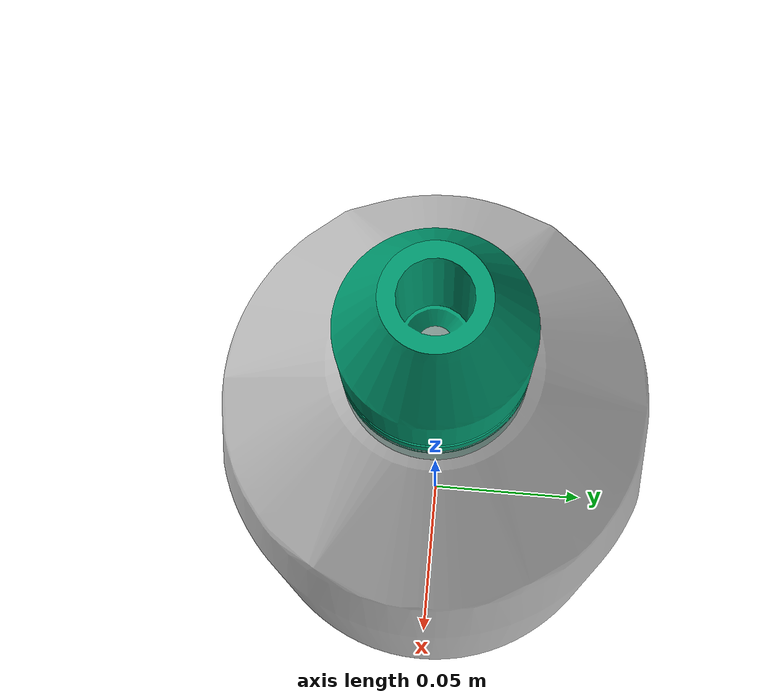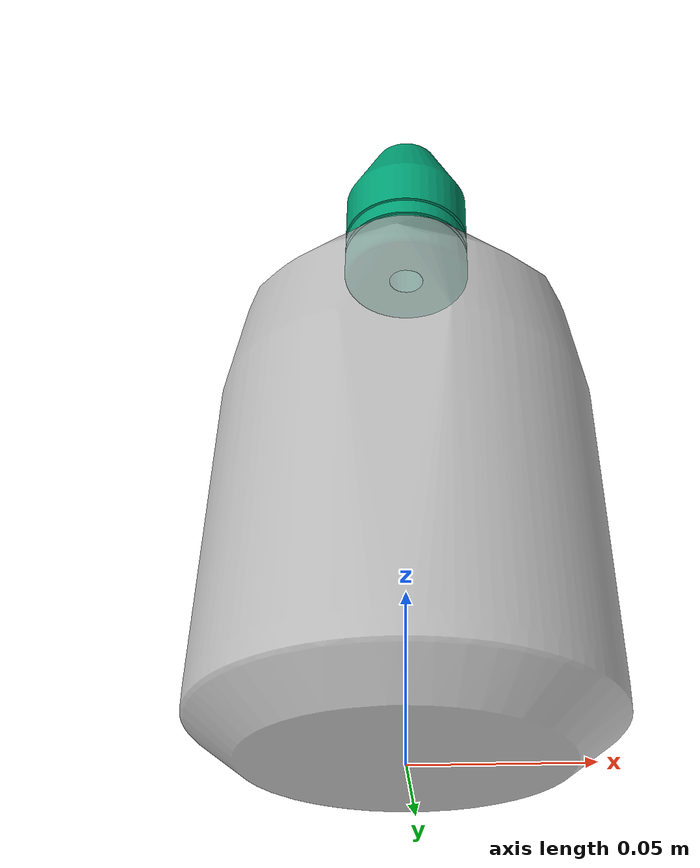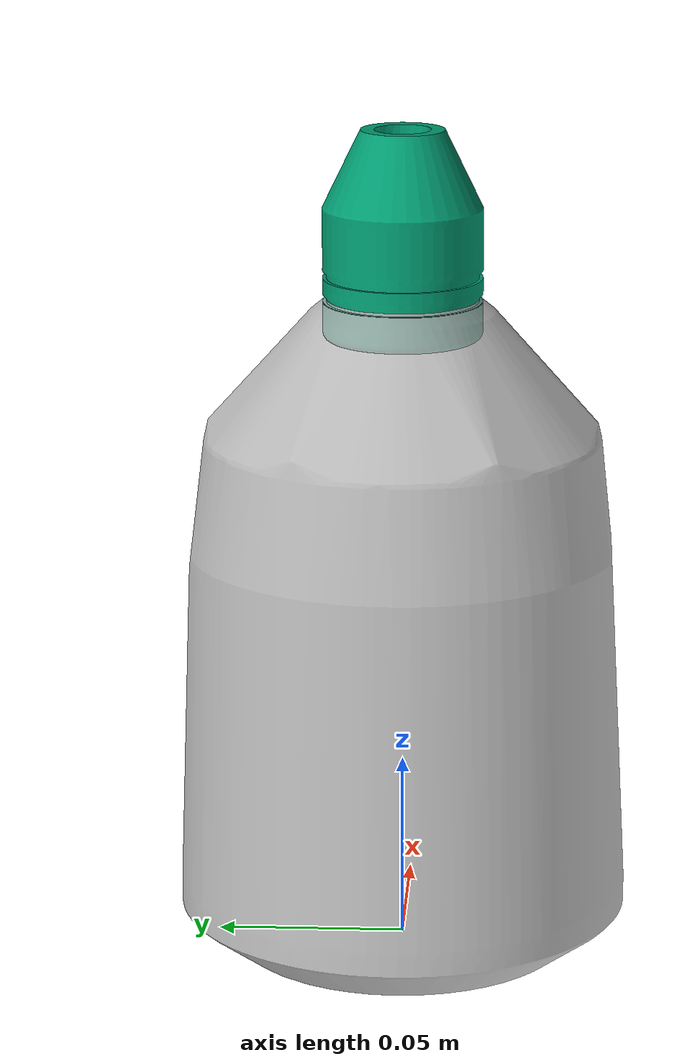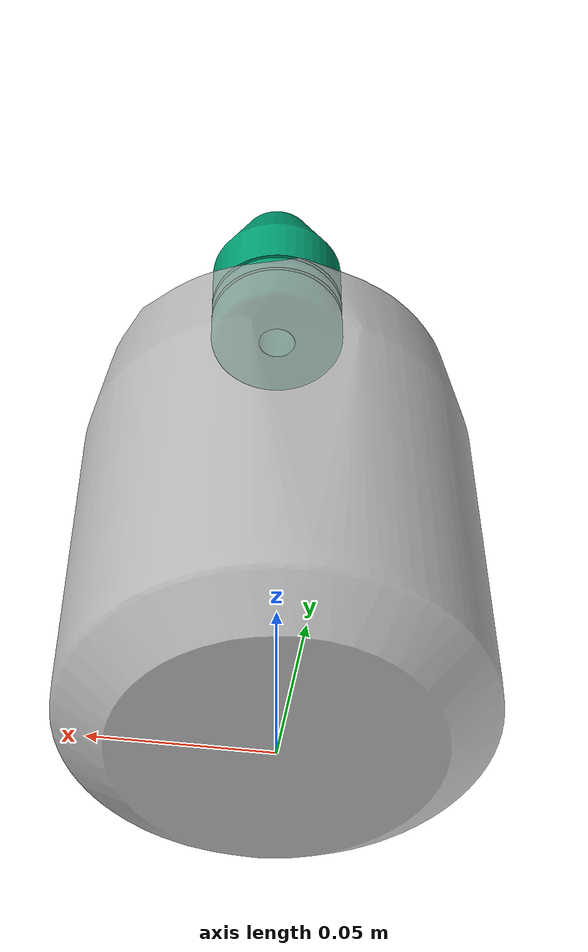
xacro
<?xml version="1.0"?>
<robot xmlns:xacro="http://ros.org/wiki/xacro" name="inail_drill_urdf">

  <xacro:include filename="$(find inail_drill_urdf)/urdf/inail_drill_macro.urdf.xacro" />

  <link name="world"/>

  <xacro:inail_drill parent_link="world">
    <origin xyz="0 0 0" rpy="0 0 0"/>
  </xacro:inail_drill>

</robot>

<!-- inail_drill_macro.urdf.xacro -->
<!--
    @author: 	Siddharth Deore
    @email:     siddharth.deore@iit.it
    @license:   MIT License
 -->
<robot xmlns:xacro="http://www.ros.org/wiki/xacro">

  <xacro:macro name="inail_drill" params="parent_link *origin">

  <xacro:property name="mm2m" value="1e-3" />
  <xacro:property name="sqmm2sqm" value="1e-6" />
  <material name="drill_dark_grey"> <color rgba="0.1 0.1 0.1 1"/> </material>
  <material name="drill_silver"> <color rgba="0.7 0.7 0.7 0.8"/> </material>

    <!-- Drill Base Link -->
    <link name="drill_base">
      <visual>
        <geometry>
          <mesh filename="package://inail_drill_urdf/meshes/drill_base.stl" scale = "0.001 0.001 0.001"/>
        </geometry>
        <material name="drill_silver"/>
      </visual>
      <collision>
        <geometry>
          <mesh filename="package://inail_drill_urdf/meshes/drill_base_simple.stl" scale = "0.001 0.001 0.001"/>
        </geometry>
      </collision>
      <inertial>
        <mass value="1.9031725" />
        <origin xyz="0 0 0" rpy="0 0 0"/>
        <inertia ixx="${9.0972194*sqmm2sqm}"
                 ixy="${-1.9337761*sqmm2sqm}"
                 ixz="${-1.8200073*sqmm2sqm}"
                 iyy="${9.1191648*sqmm2sqm}"
                 iyz="${2.9051042*sqmm2sqm}"
                 izz="${2.5246513*sqmm2sqm}" />
      </inertial>
    </link>

    <!-- Drill Chuck Link -->
    <link name="drill_chuck">
      <visual>
        <geometry>
          <mesh filename="package://inail_drill_urdf/meshes/drill_chuck.stl" scale = "0.001 0.001 0.001"/>
          <material name="drill_dark_grey"/>
        </geometry>
      </visual>
      <collision>
        <geometry>
          <mesh filename="package://inail_drill_urdf/meshes/drill_chuck_simple.stl" scale = "0.001 0.001 0.001"/>
        </geometry>
      </collision>
      <inertial>
        <mass value="0.44119789" />
        <origin xyz="0 0 0" rpy="0 0 0"/>
        <inertia ixx="${1.3584403*sqmm2sqm}" ixy="0.0" ixz="0.0" iyy="${1.3584419*sqmm2sqm}" iyz="0.0" izz="${9.8715876*sqmm2sqm}" />
      </inertial>
    </link>

    <!-- Joint between parent and drill base -->
    <joint name="${parent_link}_to_drill_base" type="fixed">
      <xacro:insert_block name="origin"/>
      <parent link="${parent_link}"/>
      <child link="drill_base"/>
    </joint>

    <!-- Joint between drill base and drill chuck -->
    <joint name="drill_joint" type="continuous">
      <parent link="drill_base"/>
      <child link="drill_chuck"/>
      <origin xyz="0 0 ${188.5*mm2m}" rpy="0 0 0"/>
      <axis xyz="0 0 1"/>
      <limit velocity="1000.0" effort="30.0"/>
    </joint>

  </xacro:macro>

</robot>
